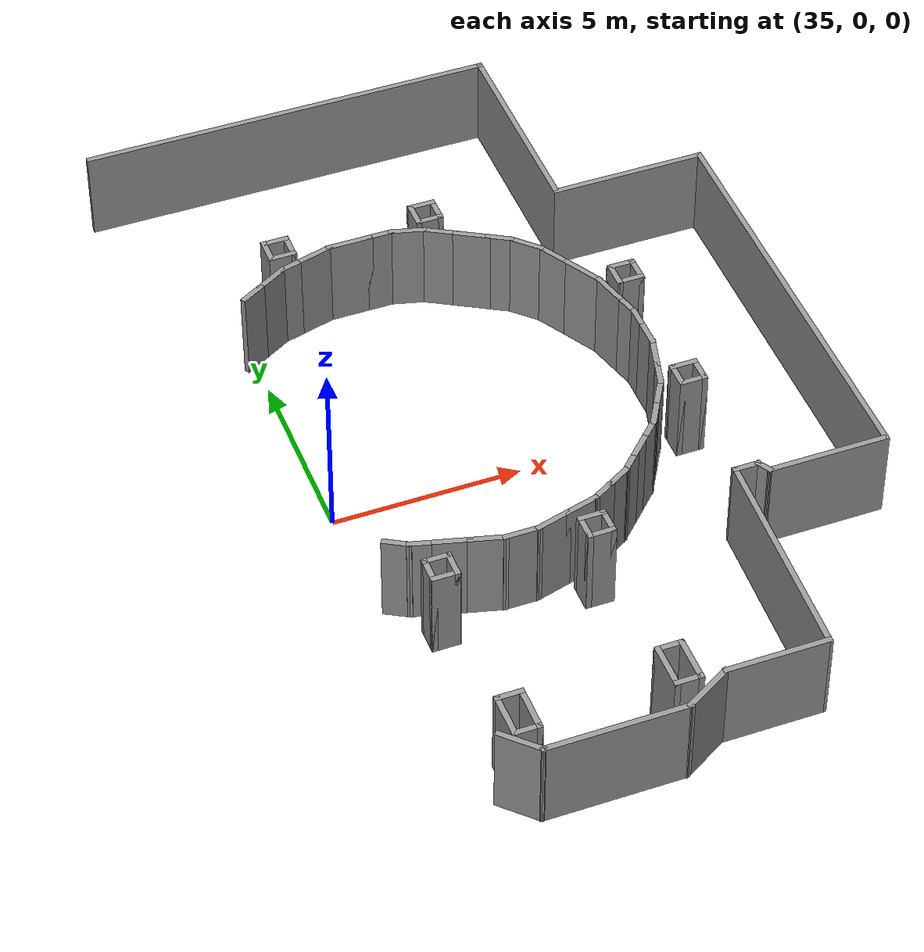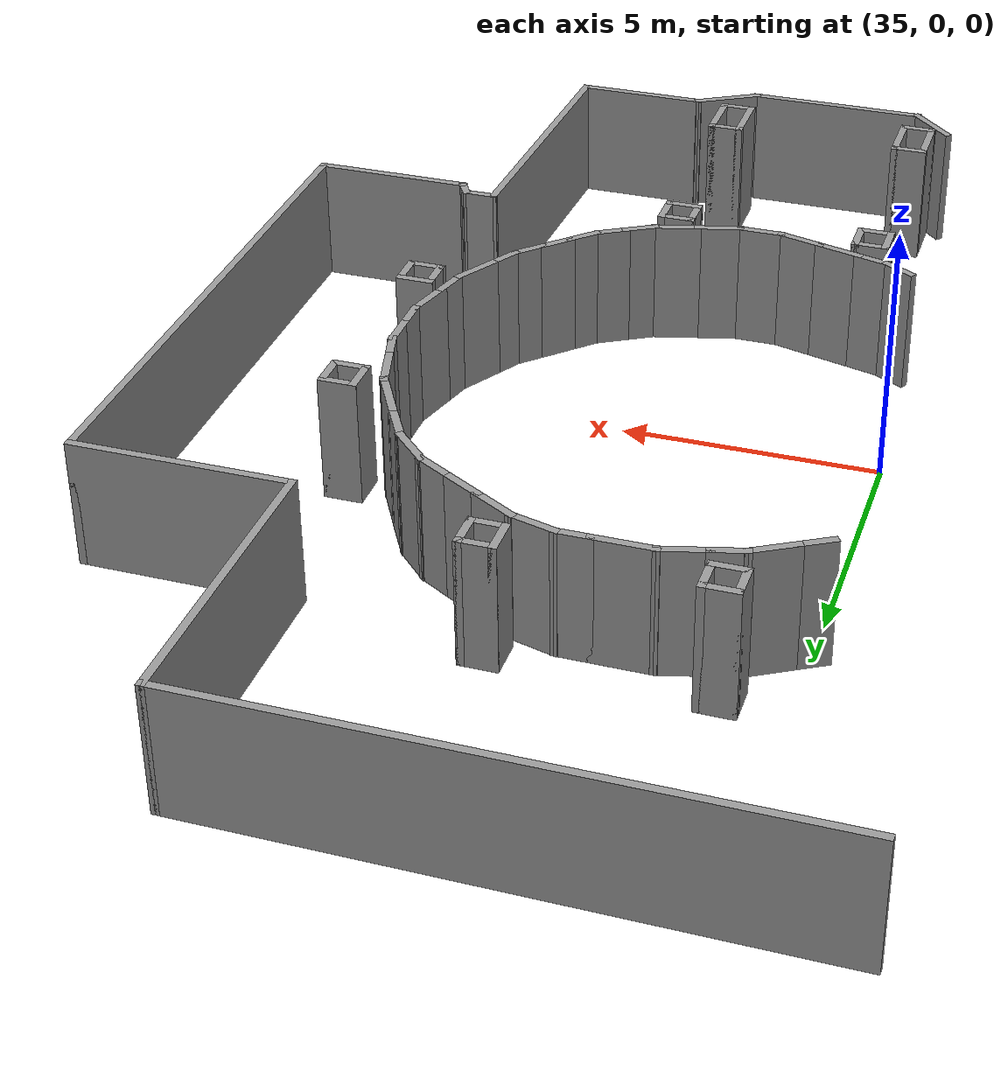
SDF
<sdf version="1.7">
 <model name="TD_n1">
  <pose>-6.74052 -9.30399 0 0 -0 0</pose>
  <link name="Wall_251">
   <collision name="Wall_251_Collision">
    <geometry><box><size>11.25 0.15 2.5</size></box></geometry>
    <pose>0 0 1.25 0 -0 0</pose>
   </collision>
   <visual name="Wall_251_Visual">
    <pose>0 0 1.25 0 -0 0</pose>
    <geometry><box><size>11.25 0.15 2.5</size></box></geometry>
    <material>
     <script><uri>file://media/materials/scripts/gazebo.material</uri><name>Gazebo/Grey</name></script>
     <ambient>1 1 1 1</ambient>
    </material>
    <meta><layer>0</layer></meta>
   </visual>
   <pose>44.9317 21.8787 0 0 -0 0</pose>
  </link>
  <link name="Wall_252">
   <collision name="Wall_252_Collision">
    <geometry><box><size>5.75 0.15 2.5</size></box></geometry>
    <pose>0 0 1.25 0 -0 0</pose>
   </collision>
   <visual name="Wall_252_Visual">
    <pose>0 0 1.25 0 -0 0</pose>
    <geometry><box><size>5.75 0.15 2.5</size></box></geometry>
    <material>
     <script><uri>file://media/materials/scripts/gazebo.material</uri><name>Gazebo/Grey</name></script>
     <ambient>1 1 1 1</ambient>
    </material>
    <meta><layer>0</layer></meta>
   </visual>
   <pose>50.4817 19.0787 0 0 -0 -1.5708</pose>
  </link>
  <link name="Wall_253">
   <collision name="Wall_253_Collision">
    <geometry><box><size>4.25 0.15 2.5</size></box></geometry>
    <pose>0 0 1.25 0 -0 0</pose>
   </collision>
   <visual name="Wall_253_Visual">
    <pose>0 0 1.25 0 -0 0</pose>
    <geometry><box><size>4.25 0.15 2.5</size></box></geometry>
    <material>
     <script><uri>file://media/materials/scripts/gazebo.material</uri><name>Gazebo/Grey</name></script>
     <ambient>1 1 1 1</ambient>
    </material>
    <meta><layer>0</layer></meta>
   </visual>
   <pose>52.5317 16.2787 0 0 -0 0</pose>
  </link>
  <link name="Wall_254">
   <collision name="Wall_254_Collision">
    <geometry><box><size>11.5 0.15 2.5</size></box></geometry>
    <pose>0 0 1.25 0 -0 0</pose>
   </collision>
   <visual name="Wall_254_Visual">
    <pose>0 0 1.25 0 -0 0</pose>
    <geometry><box><size>11.5 0.15 2.5</size></box></geometry>
    <material>
     <script><uri>file://media/materials/scripts/gazebo.material</uri><name>Gazebo/Grey</name></script>
     <ambient>1 1 1 1</ambient>
    </material>
    <meta><layer>0</layer></meta>
   </visual>
   <pose>54.5817 10.6037 0 0 -0 -1.5708</pose>
  </link>
  <link name="Wall_255">
   <collision name="Wall_255_Collision">
    <geometry><box><size>3.25 0.15 2.5</size></box></geometry>
    <pose>0 0 1.25 0 -0 0</pose>
   </collision>
   <visual name="Wall_255_Visual">
    <pose>0 0 1.25 0 -0 0</pose>
    <geometry><box><size>3.25 0.15 2.5</size></box></geometry>
    <material>
     <script><uri>file://media/materials/scripts/gazebo.material</uri><name>Gazebo/Grey</name></script>
     <ambient>1 1 1 1</ambient>
    </material>
    <meta><layer>0</layer></meta>
   </visual>
   <pose>53.0317 4.92866 0 0 -0 3.14159</pose>
  </link>
  <link name="Wall_256">
   <collision name="Wall_256_Collision">
    <geometry><box><size>0.5 0.15 2.5</size></box></geometry>
    <pose>0 0 1.25 0 -0 0</pose>
   </collision>
   <visual name="Wall_256_Visual">
    <pose>0 0 1.25 0 -0 0</pose>
    <geometry><box><size>0.5 0.15 2.5</size></box></geometry>
    <material>
     <script><uri>file://media/materials/scripts/gazebo.material</uri><name>Gazebo/Grey</name></script>
     <ambient>1 1 1 1</ambient>
    </material>
    <meta><layer>0</layer></meta>
   </visual>
   <pose>51.3942 5.08022 0 0 -0 2.0944</pose>
  </link>
  <link name="Wall_257">
   <collision name="Wall_257_Collision">
    <geometry><box><size>0.75 0.15 2.5</size></box></geometry>
    <pose>0 0 1.25 0 -0 0</pose>
   </collision>
   <visual name="Wall_257_Visual">
    <pose>0 0 1.25 0 -0 0</pose>
    <geometry><box><size>0.75 0.15 2.5</size></box></geometry>
    <material>
     <script><uri>file://media/materials/scripts/gazebo.material</uri><name>Gazebo/Grey</name></script>
     <ambient>1 1 1 1</ambient>
    </material>
    <meta><layer>0</layer></meta>
   </visual>
   <pose>51.0067 5.23177 0 0 -0 3.14159</pose>
  </link>
  <link name="Wall_265">
   <collision name="Wall_265_Collision">
    <geometry><box><size>1.25 0.15 2.5</size></box></geometry>
    <pose>0 0 1.25 0 -0 0</pose>
   </collision>
   <visual name="Wall_265_Visual">
    <pose>0 0 1.25 0 -0 0</pose>
    <geometry><box><size>1.25 0.15 2.5</size></box></geometry>
    <material>
     <script><uri>file://media/materials/scripts/gazebo.material</uri><name>Gazebo/Grey</name></script>
     <ambient>1 1 1 1</ambient>
    </material>
    <meta><layer>0</layer></meta>
   </visual>
   <pose>42.7278 -0.853113 0 0 -0 -0.785398</pose>
  </link>
  <link name="Wall_266">
   <collision name="Wall_266_Collision">
    <geometry><box><size>3.75 0.15 2.5</size></box></geometry>
    <pose>0 0 1.25 0 -0 0</pose>
   </collision>
   <visual name="Wall_266_Visual">
    <pose>0 0 1.25 0 -0 0</pose>
    <geometry><box><size>3.75 0.15 2.5</size></box></geometry>
    <material>
     <script><uri>file://media/materials/scripts/gazebo.material</uri><name>Gazebo/Grey</name></script>
     <ambient>1 1 1 1</ambient>
    </material>
    <meta><layer>0</layer></meta>
   </visual>
   <pose>44.9167 -1.24202 0 0 -0 0</pose>
  </link>
  <link name="Wall_267">
   <collision name="Wall_267_Collision">
    <geometry><box><size>1.5 0.15 2.5</size></box></geometry>
    <pose>0 0 1.25 0 -0 0</pose>
   </collision>
   <visual name="Wall_267_Visual">
    <pose>0 0 1.25 0 -0 0</pose>
    <geometry><box><size>1.5 0.15 2.5</size></box></geometry>
    <material>
     <script><uri>file://media/materials/scripts/gazebo.material</uri><name>Gazebo/Grey</name></script>
     <ambient>1 1 1 1</ambient>
    </material>
    <meta><layer>0</layer></meta>
   </visual>
   <pose>47.3013 -0.904522 0 0 -0 0.523599</pose>
  </link>
  <link name="Wall_268">
   <collision name="Wall_268_Collision">
    <geometry><box><size>2.75 0.15 2.5</size></box></geometry>
    <pose>0 0 1.25 0 -0 0</pose>
   </collision>
   <visual name="Wall_268_Visual">
    <pose>0 0 1.25 0 -0 0</pose>
    <geometry><box><size>2.75 0.15 2.5</size></box></geometry>
    <material>
     <script><uri>file://media/materials/scripts/gazebo.material</uri><name>Gazebo/Grey</name></script>
     <ambient>1 1 1 1</ambient>
    </material>
    <meta><layer>0</layer></meta>
   </visual>
   <pose>49.1858 -0.567022 0 0 -0 0</pose>
  </link>
  <link name="Wall_269">
   <collision name="Wall_269_Collision">
    <geometry><box><size>5.953 0.15 2.5</size></box></geometry>
    <pose>0 0 1.25 0 -0 0</pose>
   </collision>
   <visual name="Wall_269_Visual">
    <pose>0 0 1.25 0 -0 0</pose>
    <geometry><box><size>5.953 0.15 2.5</size></box></geometry>
    <material>
     <script><uri>file://media/materials/scripts/gazebo.material</uri><name>Gazebo/Grey</name></script>
     <ambient>1 1 1 1</ambient>
    </material>
    <meta><layer>0</layer></meta>
   </visual>
   <pose>50.5963 2.33237 0 0 -0 1.53272</pose>
  </link>
  <link name="Wall_271">
   <collision name="Wall_271_Collision">
    <geometry><box><size>1.25 0.15 2.5</size></box></geometry>
    <pose>0 0 1.25 0 -0 0</pose>
   </collision>
   <visual name="Wall_271_Visual">
    <pose>0 0 1.25 0 -0 0</pose>
    <geometry><box><size>1.25 0.15 2.5</size></box></geometry>
    <material>
     <script><uri>file://media/materials/scripts/gazebo.material</uri><name>Gazebo/Grey</name></script>
     <ambient>1 1 1 1</ambient>
    </material>
    <meta><layer>0</layer></meta>
   </visual>
   <pose>42.681 -0.025559 0 0 -0 -1.5708</pose>
  </link>
  <link name="Wall_272">
   <collision name="Wall_272_Collision">
    <geometry><box><size>0.75 0.15 2.5</size></box></geometry>
    <pose>0 0 1.25 0 -0 0</pose>
   </collision>
   <visual name="Wall_272_Visual">
    <pose>0 0 1.25 0 -0 0</pose>
    <geometry><box><size>0.75 0.15 2.5</size></box></geometry>
    <material>
     <script><uri>file://media/materials/scripts/gazebo.material</uri><name>Gazebo/Grey</name></script>
     <ambient>1 1 1 1</ambient>
    </material>
    <meta><layer>0</layer></meta>
   </visual>
   <pose>42.981 -0.57556 0 0 -0 0</pose>
  </link>
  <link name="Wall_273">
   <collision name="Wall_273_Collision">
    <geometry><box><size>1.25 0.15 2.5</size></box></geometry>
    <pose>0 0 1.25 0 -0 0</pose>
   </collision>
   <visual name="Wall_273_Visual">
    <pose>0 0 1.25 0 -0 0</pose>
    <geometry><box><size>1.25 0.15 2.5</size></box></geometry>
    <material>
     <script><uri>file://media/materials/scripts/gazebo.material</uri><name>Gazebo/Grey</name></script>
     <ambient>1 1 1 1</ambient>
    </material>
    <meta><layer>0</layer></meta>
   </visual>
   <pose>43.281 -0.025559 0 0 -0 1.5708</pose>
  </link>
  <link name="Wall_274">
   <collision name="Wall_274_Collision">
    <geometry><box><size>0.75 0.15 2.5</size></box></geometry>
    <pose>0 0 1.25 0 -0 0</pose>
   </collision>
   <visual name="Wall_274_Visual">
    <pose>0 0 1.25 0 -0 0</pose>
    <geometry><box><size>0.75 0.15 2.5</size></box></geometry>
    <material>
     <script><uri>file://media/materials/scripts/gazebo.material</uri><name>Gazebo/Grey</name></script>
     <ambient>1 1 1 1</ambient>
    </material>
    <meta><layer>0</layer></meta>
   </visual>
   <pose>42.981 0.524441 0 0 -0 3.14159</pose>
  </link>
  <link name="Wall_276">
   <collision name="Wall_276_Collision">
    <geometry><box><size>1.25 0.15 2.5</size></box></geometry>
    <pose>0 0 1.25 0 -0 0</pose>
   </collision>
   <visual name="Wall_276_Visual">
    <pose>0 0 1.25 0 -0 0</pose>
    <geometry><box><size>1.25 0.15 2.5</size></box></geometry>
    <material>
     <script><uri>file://media/materials/scripts/gazebo.material</uri><name>Gazebo/Grey</name></script>
     <ambient>1 1 1 1</ambient>
    </material>
    <meta><layer>0</layer></meta>
   </visual>
   <pose>46.6783 0.034101 0 0 -0 -1.5708</pose>
  </link>
  <link name="Wall_277">
   <collision name="Wall_277_Collision">
    <geometry><box><size>0.75 0.15 2.5</size></box></geometry>
    <pose>0 0 1.25 0 -0 0</pose>
   </collision>
   <visual name="Wall_277_Visual">
    <pose>0 0 1.25 0 -0 0</pose>
    <geometry><box><size>0.75 0.15 2.5</size></box></geometry>
    <material>
     <script><uri>file://media/materials/scripts/gazebo.material</uri><name>Gazebo/Grey</name></script>
     <ambient>1 1 1 1</ambient>
    </material>
    <meta><layer>0</layer></meta>
   </visual>
   <pose>46.9783 -0.515898 0 0 -0 0</pose>
  </link>
  <link name="Wall_278">
   <collision name="Wall_278_Collision">
    <geometry><box><size>1.25 0.15 2.5</size></box></geometry>
    <pose>0 0 1.25 0 -0 0</pose>
   </collision>
   <visual name="Wall_278_Visual">
    <pose>0 0 1.25 0 -0 0</pose>
    <geometry><box><size>1.25 0.15 2.5</size></box></geometry>
    <material>
     <script><uri>file://media/materials/scripts/gazebo.material</uri><name>Gazebo/Grey</name></script>
     <ambient>1 1 1 1</ambient>
    </material>
    <meta><layer>0</layer></meta>
   </visual>
   <pose>47.2783 0.034101 0 0 -0 1.5708</pose>
  </link>
  <link name="Wall_279">
   <collision name="Wall_279_Collision">
    <geometry><box><size>0.75 0.15 2.5</size></box></geometry>
    <pose>0 0 1.25 0 -0 0</pose>
   </collision>
   <visual name="Wall_279_Visual">
    <pose>0 0 1.25 0 -0 0</pose>
    <geometry><box><size>0.75 0.15 2.5</size></box></geometry>
    <material>
     <script><uri>file://media/materials/scripts/gazebo.material</uri><name>Gazebo/Grey</name></script>
     <ambient>1 1 1 1</ambient>
    </material>
    <meta><layer>0</layer></meta>
   </visual>
   <pose>46.9783 0.584102 0 0 -0 3.14159</pose>
  </link>
  <link name="Wall_285">
   <collision name="Wall_285_Collision">
    <geometry><box><size>0.75 0.15 2.5</size></box></geometry>
    <pose>0 0 1.25 0 -0 0</pose>
   </collision>
   <visual name="Wall_285_Visual">
    <pose>0 0 1.25 0 -0 0</pose>
    <geometry><box><size>0.75 0.15 2.5</size></box></geometry>
    <material>
     <script><uri>file://media/materials/scripts/gazebo.material</uri><name>Gazebo/Grey</name></script>
     <ambient>1 1 1 1</ambient>
    </material>
    <meta><layer>0</layer></meta>
   </visual>
   <pose>42.2116 5.8765 0 0 -0 -0.523599</pose>
  </link>
  <link name="Wall_286">
   <collision name="Wall_286_Collision">
    <geometry><box><size>0.75 0.15 2.5</size></box></geometry>
    <pose>0 0 1.25 0 -0 0</pose>
   </collision>
   <visual name="Wall_286_Visual">
    <pose>0 0 1.25 0 -0 0</pose>
    <geometry><box><size>0.75 0.15 2.5</size></box></geometry>
    <material>
     <script><uri>file://media/materials/scripts/gazebo.material</uri><name>Gazebo/Grey</name></script>
     <ambient>1 1 1 1</ambient>
    </material>
    <meta><layer>0</layer></meta>
   </visual>
   <pose>42.7612 5.64886 0 0 -0 -0.261799</pose>
  </link>
  <link name="Wall_287">
   <collision name="Wall_287_Collision">
    <geometry><box><size>1 0.15 2.5</size></box></geometry>
    <pose>0 0 1.25 0 -0 0</pose>
   </collision>
   <visual name="Wall_287_Visual">
    <pose>0 0 1.25 0 -0 0</pose>
    <geometry><box><size>1 0.15 2.5</size></box></geometry>
    <material>
     <script><uri>file://media/materials/scripts/gazebo.material</uri><name>Gazebo/Grey</name></script>
     <ambient>1 1 1 1</ambient>
    </material>
    <meta><layer>0</layer></meta>
   </visual>
   <pose>43.4615 5.46121 0 0 -0 -0.261799</pose>
  </link>
  <link name="Wall_288">
   <collision name="Wall_288_Collision">
    <geometry><box><size>1 0.15 2.5</size></box></geometry>
    <pose>0 0 1.25 0 -0 0</pose>
   </collision>
   <visual name="Wall_288_Visual">
    <pose>0 0 1.25 0 -0 0</pose>
    <geometry><box><size>1 0.15 2.5</size></box></geometry>
    <material>
     <script><uri>file://media/materials/scripts/gazebo.material</uri><name>Gazebo/Grey</name></script>
     <ambient>1 1 1 1</ambient>
    </material>
    <meta><layer>0</layer></meta>
   </visual>
   <pose>44.2825 5.24122 0 0 -0 -0.261799</pose>
  </link>
  <link name="Wall_289">
   <collision name="Wall_289_Collision">
    <geometry><box><size>1 0.15 2.5</size></box></geometry>
    <pose>0 0 1.25 0 -0 0</pose>
   </collision>
   <visual name="Wall_289_Visual">
    <pose>0 0 1.25 0 -0 0</pose>
    <geometry><box><size>1 0.15 2.5</size></box></geometry>
    <material>
     <script><uri>file://media/materials/scripts/gazebo.material</uri><name>Gazebo/Grey</name></script>
     <ambient>1 1 1 1</ambient>
    </material>
    <meta><layer>0</layer></meta>
   </visual>
   <pose>45.118 5.13122 0 0 -0 0</pose>
  </link>
  <link name="Wall_290">
   <collision name="Wall_290_Collision">
    <geometry><box><size>1 0.15 2.5</size></box></geometry>
    <pose>0 0 1.25 0 -0 0</pose>
   </collision>
   <visual name="Wall_290_Visual">
    <pose>0 0 1.25 0 -0 0</pose>
    <geometry><box><size>1 0.15 2.5</size></box></geometry>
    <material>
     <script><uri>file://media/materials/scripts/gazebo.material</uri><name>Gazebo/Grey</name></script>
     <ambient>1 1 1 1</ambient>
    </material>
    <meta><layer>0</layer></meta>
   </visual>
   <pose>45.9536 5.24122 0 0 -0 0.261799</pose>
  </link>
  <link name="Wall_291">
   <collision name="Wall_291_Collision">
    <geometry><box><size>1 0.15 2.5</size></box></geometry>
    <pose>0 0 1.25 0 -0 0</pose>
   </collision>
   <visual name="Wall_291_Visual">
    <pose>0 0 1.25 0 -0 0</pose>
    <geometry><box><size>1 0.15 2.5</size></box></geometry>
    <material>
     <script><uri>file://media/materials/scripts/gazebo.material</uri><name>Gazebo/Grey</name></script>
     <ambient>1 1 1 1</ambient>
    </material>
    <meta><layer>0</layer></meta>
   </visual>
   <pose>46.7746 5.46121 0 0 -0 0.261799</pose>
  </link>
  <link name="Wall_292">
   <collision name="Wall_292_Collision">
    <geometry><box><size>0.75 0.15 2.5</size></box></geometry>
    <pose>0 0 1.25 0 -0 0</pose>
   </collision>
   <visual name="Wall_292_Visual">
    <pose>0 0 1.25 0 -0 0</pose>
    <geometry><box><size>0.75 0.15 2.5</size></box></geometry>
    <material>
     <script><uri>file://media/materials/scripts/gazebo.material</uri><name>Gazebo/Grey</name></script>
     <ambient>1 1 1 1</ambient>
    </material>
    <meta><layer>0</layer></meta>
   </visual>
   <pose>47.4449 5.72121 0 0 -0 0.523599</pose>
  </link>
  <link name="Wall_293">
   <collision name="Wall_293_Collision">
    <geometry><box><size>0.75 0.15 2.5</size></box></geometry>
    <pose>0 0 1.25 0 -0 0</pose>
   </collision>
   <visual name="Wall_293_Visual">
    <pose>0 0 1.25 0 -0 0</pose>
    <geometry><box><size>0.75 0.15 2.5</size></box></geometry>
    <material>
     <script><uri>file://media/materials/scripts/gazebo.material</uri><name>Gazebo/Grey</name></script>
     <ambient>1 1 1 1</ambient>
    </material>
    <meta><layer>0</layer></meta>
   </visual>
   <pose>47.9645 6.02121 0 0 -0 0.523599</pose>
  </link>
  <link name="Wall_294">
   <collision name="Wall_294_Collision">
    <geometry><box><size>0.75 0.15 2.5</size></box></geometry>
    <pose>0 0 1.25 0 -0 0</pose>
   </collision>
   <visual name="Wall_294_Visual">
    <pose>0 0 1.25 0 -0 0</pose>
    <geometry><box><size>0.75 0.15 2.5</size></box></geometry>
    <material>
     <script><uri>file://media/materials/scripts/gazebo.material</uri><name>Gazebo/Grey</name></script>
     <ambient>1 1 1 1</ambient>
    </material>
    <meta><layer>0</layer></meta>
   </visual>
   <pose>48.4365 6.38334 0 0 -0 0.785398</pose>
  </link>
  <link name="Wall_295">
   <collision name="Wall_295_Collision">
    <geometry><box><size>0.75 0.15 2.5</size></box></geometry>
    <pose>0 0 1.25 0 -0 0</pose>
   </collision>
   <visual name="Wall_295_Visual">
    <pose>0 0 1.25 0 -0 0</pose>
    <geometry><box><size>0.75 0.15 2.5</size></box></geometry>
    <material>
     <script><uri>file://media/materials/scripts/gazebo.material</uri><name>Gazebo/Grey</name></script>
     <ambient>1 1 1 1</ambient>
    </material>
    <meta><layer>0</layer></meta>
   </visual>
   <pose>48.8607 6.80761 0 0 -0 0.785398</pose>
  </link>
  <link name="Wall_296">
   <collision name="Wall_296_Collision">
    <geometry><box><size>0.75 0.15 2.5</size></box></geometry>
    <pose>0 0 1.25 0 -0 0</pose>
   </collision>
   <visual name="Wall_296_Visual">
    <pose>0 0 1.25 0 -0 0</pose>
    <geometry><box><size>0.75 0.15 2.5</size></box></geometry>
    <material>
     <script><uri>file://media/materials/scripts/gazebo.material</uri><name>Gazebo/Grey</name></script>
     <ambient>1 1 1 1</ambient>
    </material>
    <meta><layer>0</layer></meta>
   </visual>
   <pose>49.285 7.23187 0 0 -0 0.785398</pose>
  </link>
  <link name="Wall_297">
   <collision name="Wall_297_Collision">
    <geometry><box><size>0.75 0.15 2.5</size></box></geometry>
    <pose>0 0 1.25 0 -0 0</pose>
   </collision>
   <visual name="Wall_297_Visual">
    <pose>0 0 1.25 0 -0 0</pose>
    <geometry><box><size>0.75 0.15 2.5</size></box></geometry>
    <material>
     <script><uri>file://media/materials/scripts/gazebo.material</uri><name>Gazebo/Grey</name></script>
     <ambient>1 1 1 1</ambient>
    </material>
    <meta><layer>0</layer></meta>
   </visual>
   <pose>49.6471 7.70381 0 0 -0 1.0472</pose>
  </link>
  <link name="Wall_298">
   <collision name="Wall_298_Collision">
    <geometry><box><size>1 0.15 2.5</size></box></geometry>
    <pose>0 0 1.25 0 -0 0</pose>
   </collision>
   <visual name="Wall_298_Visual">
    <pose>0 0 1.25 0 -0 0</pose>
    <geometry><box><size>1 0.15 2.5</size></box></geometry>
    <material>
     <script><uri>file://media/materials/scripts/gazebo.material</uri><name>Gazebo/Grey</name></script>
     <ambient>1 1 1 1</ambient>
    </material>
    <meta><layer>0</layer></meta>
   </visual>
   <pose>50.0096 8.33168 0 0 -0 1.0472</pose>
  </link>
  <link name="Wall_299">
   <collision name="Wall_299_Collision">
    <geometry><box><size>0.75 0.15 2.5</size></box></geometry>
    <pose>0 0 1.25 0 -0 0</pose>
   </collision>
   <visual name="Wall_299_Visual">
    <pose>0 0 1.25 0 -0 0</pose>
    <geometry><box><size>0.75 0.15 2.5</size></box></geometry>
    <material>
     <script><uri>file://media/materials/scripts/gazebo.material</uri><name>Gazebo/Grey</name></script>
     <ambient>1 1 1 1</ambient>
    </material>
    <meta><layer>0</layer></meta>
   </visual>
   <pose>50.2998 8.98952 0 0 -0 1.309</pose>
  </link>
  <link name="Wall_300">
   <collision name="Wall_300_Collision">
    <geometry><box><size>1 0.15 2.5</size></box></geometry>
    <pose>0 0 1.25 0 -0 0</pose>
   </collision>
   <visual name="Wall_300_Visual">
    <pose>0 0 1.25 0 -0 0</pose>
    <geometry><box><size>1 0.15 2.5</size></box></geometry>
    <material>
     <script><uri>file://media/materials/scripts/gazebo.material</uri><name>Gazebo/Grey</name></script>
     <ambient>1 1 1 1</ambient>
    </material>
    <meta><layer>0</layer></meta>
   </visual>
   <pose>50.4874 9.68981 0 0 -0 1.309</pose>
  </link>
  <link name="Wall_301">
   <collision name="Wall_301_Collision">
    <geometry><box><size>0.75 0.15 2.5</size></box></geometry>
    <pose>0 0 1.25 0 -0 0</pose>
   </collision>
   <visual name="Wall_301_Visual">
    <pose>0 0 1.25 0 -0 0</pose>
    <geometry><box><size>0.75 0.15 2.5</size></box></geometry>
    <material>
     <script><uri>file://media/materials/scripts/gazebo.material</uri><name>Gazebo/Grey</name></script>
     <ambient>1 1 1 1</ambient>
    </material>
    <meta><layer>0</layer></meta>
   </visual>
   <pose>50.5974 10.4003 0 0 -0 1.5708</pose>
  </link>
  <link name="Wall_302">
   <collision name="Wall_302_Collision">
    <geometry><box><size>0.75 0.15 2.5</size></box></geometry>
    <pose>0 0 1.25 0 -0 0</pose>
   </collision>
   <visual name="Wall_302_Visual">
    <pose>0 0 1.25 0 -0 0</pose>
    <geometry><box><size>0.75 0.15 2.5</size></box></geometry>
    <material>
     <script><uri>file://media/materials/scripts/gazebo.material</uri><name>Gazebo/Grey</name></script>
     <ambient>1 1 1 1</ambient>
    </material>
    <meta><layer>0</layer></meta>
   </visual>
   <pose>50.5974 11.0003 0 0 -0 1.5708</pose>
  </link>
  <link name="Wall_303">
   <collision name="Wall_303_Collision">
    <geometry><box><size>0.75 0.15 2.5</size></box></geometry>
    <pose>0 0 1.25 0 -0 0</pose>
   </collision>
   <visual name="Wall_303_Visual">
    <pose>0 0 1.25 0 -0 0</pose>
    <geometry><box><size>0.75 0.15 2.5</size></box></geometry>
    <material>
     <script><uri>file://media/materials/scripts/gazebo.material</uri><name>Gazebo/Grey</name></script>
     <ambient>1 1 1 1</ambient>
    </material>
    <meta><layer>0</layer></meta>
   </visual>
   <pose>50.5198 11.5901 0 0 -0 1.8326</pose>
  </link>
  <link name="Wall_304">
   <collision name="Wall_304_Collision">
    <geometry><box><size>1 0.15 2.5</size></box></geometry>
    <pose>0 0 1.25 0 -0 0</pose>
   </collision>
   <visual name="Wall_304_Visual">
    <pose>0 0 1.25 0 -0 0</pose>
    <geometry><box><size>1 0.15 2.5</size></box></geometry>
    <material>
     <script><uri>file://media/materials/scripts/gazebo.material</uri><name>Gazebo/Grey</name></script>
     <ambient>1 1 1 1</ambient>
    </material>
    <meta><layer>0</layer></meta>
   </visual>
   <pose>50.3321 12.2904 0 0 -0 1.8326</pose>
  </link>
  <link name="Wall_306">
   <collision name="Wall_306_Collision">
    <geometry><box><size>1.19577 0.15 2.5</size></box></geometry>
    <pose>0 0 1.25 0 -0 0</pose>
   </collision>
   <visual name="Wall_306_Visual">
    <pose>0 0 1.25 0 -0 0</pose>
    <geometry><box><size>1.19577 0.15 2.5</size></box></geometry>
    <material>
     <script><uri>file://media/materials/scripts/gazebo.material</uri><name>Gazebo/Grey</name></script>
     <ambient>1 1 1 1</ambient>
    </material>
    <meta><layer>0</layer></meta>
   </visual>
   <pose>49.967 13.1574 0 0 -0 2.08047</pose>
  </link>
  <link name="Wall_309">
   <collision name="Wall_309_Collision">
    <geometry><box><size>1 0.15 2.5</size></box></geometry>
    <pose>0 0 1.25 0 -0 0</pose>
   </collision>
   <visual name="Wall_309_Visual">
    <pose>0 0 1.25 0 -0 0</pose>
    <geometry><box><size>1 0.15 2.5</size></box></geometry>
    <material>
     <script><uri>file://media/materials/scripts/gazebo.material</uri><name>Gazebo/Grey</name></script>
     <ambient>1 1 1 1</ambient>
    </material>
    <meta><layer>0</layer></meta>
   </visual>
   <pose>49.4994 13.9818 0 0 -0 2.0944</pose>
  </link>
  <link name="Wall_310">
   <collision name="Wall_310_Collision">
    <geometry><box><size>1 0.15 2.5</size></box></geometry>
    <pose>0 0 1.25 0 -0 0</pose>
   </collision>
   <visual name="Wall_310_Visual">
    <pose>0 0 1.25 0 -0 0</pose>
    <geometry><box><size>1 0.15 2.5</size></box></geometry>
    <material>
     <script><uri>file://media/materials/scripts/gazebo.material</uri><name>Gazebo/Grey</name></script>
     <ambient>1 1 1 1</ambient>
    </material>
    <meta><layer>0</layer></meta>
   </visual>
   <pose>48.9864 14.6504 0 0 -0 2.35619</pose>
  </link>
  <link name="Wall_312">
   <collision name="Wall_312_Collision">
    <geometry><box><size>0.75 0.15 2.5</size></box></geometry>
    <pose>0 0 1.25 0 -0 0</pose>
   </collision>
   <visual name="Wall_312_Visual">
    <pose>0 0 1.25 0 -0 0</pose>
    <geometry><box><size>0.75 0.15 2.5</size></box></geometry>
    <material>
     <script><uri>file://media/materials/scripts/gazebo.material</uri><name>Gazebo/Grey</name></script>
     <ambient>1 1 1 1</ambient>
    </material>
    <meta><layer>0</layer></meta>
   </visual>
   <pose>48.4261 15.1009 0 0 -0 2.61799</pose>
  </link>
  <link name="Wall_313">
   <collision name="Wall_313_Collision">
    <geometry><box><size>1 0.15 2.5</size></box></geometry>
    <pose>0 0 1.25 0 -0 0</pose>
   </collision>
   <visual name="Wall_313_Visual">
    <pose>0 0 1.25 0 -0 0</pose>
    <geometry><box><size>1 0.15 2.5</size></box></geometry>
    <material>
     <script><uri>file://media/materials/scripts/gazebo.material</uri><name>Gazebo/Grey</name></script>
     <ambient>1 1 1 1</ambient>
    </material>
    <meta><layer>0</layer></meta>
   </visual>
   <pose>47.7982 15.4634 0 0 -0 2.61799</pose>
  </link>
  <link name="Wall_314">
   <collision name="Wall_314_Collision">
    <geometry><box><size>1 0.15 2.5</size></box></geometry>
    <pose>0 0 1.25 0 -0 0</pose>
   </collision>
   <visual name="Wall_314_Visual">
    <pose>0 0 1.25 0 -0 0</pose>
    <geometry><box><size>1 0.15 2.5</size></box></geometry>
    <material>
     <script><uri>file://media/materials/scripts/gazebo.material</uri><name>Gazebo/Grey</name></script>
     <ambient>1 1 1 1</ambient>
    </material>
    <meta><layer>0</layer></meta>
   </visual>
   <pose>47.0621 15.8884 0 0 -0 2.61799</pose>
  </link>
  <link name="Wall_315">
   <collision name="Wall_315_Collision">
    <geometry><box><size>1 0.15 2.5</size></box></geometry>
    <pose>0 0 1.25 0 -0 0</pose>
   </collision>
   <visual name="Wall_315_Visual">
    <pose>0 0 1.25 0 -0 0</pose>
    <geometry><box><size>1 0.15 2.5</size></box></geometry>
    <material>
     <script><uri>file://media/materials/scripts/gazebo.material</uri><name>Gazebo/Grey</name></script>
     <ambient>1 1 1 1</ambient>
    </material>
    <meta><layer>0</layer></meta>
   </visual>
   <pose>46.2835 16.2109 0 0 -0 2.87979</pose>
  </link>
  <link name="Wall_316">
   <collision name="Wall_316_Collision">
    <geometry><box><size>0.75 0.15 2.5</size></box></geometry>
    <pose>0 0 1.25 0 -0 0</pose>
   </collision>
   <visual name="Wall_316_Visual">
    <pose>0 0 1.25 0 -0 0</pose>
    <geometry><box><size>0.75 0.15 2.5</size></box></geometry>
    <material>
     <script><uri>file://media/materials/scripts/gazebo.material</uri><name>Gazebo/Grey</name></script>
     <ambient>1 1 1 1</ambient>
    </material>
    <meta><layer>0</layer></meta>
   </visual>
   <pose>45.573 16.3209 0 0 -0 3.14159</pose>
  </link>
  <link name="Wall_317">
   <collision name="Wall_317_Collision">
    <geometry><box><size>1.25 0.15 2.5</size></box></geometry>
    <pose>0 0 1.25 0 -0 0</pose>
   </collision>
   <visual name="Wall_317_Visual">
    <pose>0 0 1.25 0 -0 0</pose>
    <geometry><box><size>1.25 0.15 2.5</size></box></geometry>
    <material>
     <script><uri>file://media/materials/scripts/gazebo.material</uri><name>Gazebo/Grey</name></script>
     <ambient>1 1 1 1</ambient>
    </material>
    <meta><layer>0</layer></meta>
   </visual>
   <pose>44.723 16.3209 0 0 -0 3.14159</pose>
  </link>
  <link name="Wall_318">
   <collision name="Wall_318_Collision">
    <geometry><box><size>1 0.15 2.5</size></box></geometry>
    <pose>0 0 1.25 0 -0 0</pose>
   </collision>
   <visual name="Wall_318_Visual">
    <pose>0 0 1.25 0 -0 0</pose>
    <geometry><box><size>1 0.15 2.5</size></box></geometry>
    <material>
     <script><uri>file://media/materials/scripts/gazebo.material</uri><name>Gazebo/Grey</name></script>
     <ambient>1 1 1 1</ambient>
    </material>
    <meta><layer>0</layer></meta>
   </visual>
   <pose>43.7625 16.2109 0 0 -0 -2.87979</pose>
  </link>
  <link name="Wall_319">
   <collision name="Wall_319_Collision">
    <geometry><box><size>0.75 0.15 2.5</size></box></geometry>
    <pose>0 0 1.25 0 -0 0</pose>
   </collision>
   <visual name="Wall_319_Visual">
    <pose>0 0 1.25 0 -0 0</pose>
    <geometry><box><size>0.75 0.15 2.5</size></box></geometry>
    <material>
     <script><uri>file://media/materials/scripts/gazebo.material</uri><name>Gazebo/Grey</name></script>
     <ambient>1 1 1 1</ambient>
    </material>
    <meta><layer>0</layer></meta>
   </visual>
   <pose>43.0622 16.0233 0 0 -0 -2.87979</pose>
  </link>
  <link name="Wall_320">
   <collision name="Wall_320_Collision">
    <geometry><box><size>1 0.15 2.5</size></box></geometry>
    <pose>0 0 1.25 0 -0 0</pose>
   </collision>
   <visual name="Wall_320_Visual">
    <pose>0 0 1.25 0 -0 0</pose>
    <geometry><box><size>1 0.15 2.5</size></box></geometry>
    <material>
     <script><uri>file://media/materials/scripts/gazebo.material</uri><name>Gazebo/Grey</name></script>
     <ambient>1 1 1 1</ambient>
    </material>
    <meta><layer>0</layer></meta>
   </visual>
   <pose>42.4043 15.7332 0 0 -0 -2.61799</pose>
  </link>
  <link name="Wall_321">
   <collision name="Wall_321_Collision">
    <geometry><box><size>0.75 0.15 2.5</size></box></geometry>
    <pose>0 0 1.25 0 -0 0</pose>
   </collision>
   <visual name="Wall_321_Visual">
    <pose>0 0 1.25 0 -0 0</pose>
    <geometry><box><size>0.75 0.15 2.5</size></box></geometry>
    <material>
     <script><uri>file://media/materials/scripts/gazebo.material</uri><name>Gazebo/Grey</name></script>
     <ambient>1 1 1 1</ambient>
    </material>
    <meta><layer>0</layer></meta>
   </visual>
   <pose>41.7765 15.3707 0 0 -0 -2.61799</pose>
  </link>
  <link name="Wall_333">
   <collision name="Wall_333_Collision">
    <geometry><box><size>0.75 0.15 2.5</size></box></geometry>
    <pose>0 0 1.25 0 -0 0</pose>
   </collision>
   <visual name="Wall_333_Visual">
    <pose>0 0 1.25 0 -0 0</pose>
    <geometry><box><size>0.75 0.15 2.5</size></box></geometry>
    <material>
     <script><uri>file://media/materials/scripts/gazebo.material</uri><name>Gazebo/Grey</name></script>
     <ambient>1 1 1 1</ambient>
    </material>
    <meta><layer>0</layer></meta>
   </visual>
   <pose>42.6412 16.7506 0 0 -0 -1.5708</pose>
  </link>
  <link name="Wall_334">
   <collision name="Wall_334_Collision">
    <geometry><box><size>0.75 0.15 2.5</size></box></geometry>
    <pose>0 0 1.25 0 -0 0</pose>
   </collision>
   <visual name="Wall_334_Visual">
    <pose>0 0 1.25 0 -0 0</pose>
    <geometry><box><size>0.75 0.15 2.5</size></box></geometry>
    <material>
     <script><uri>file://media/materials/scripts/gazebo.material</uri><name>Gazebo/Grey</name></script>
     <ambient>1 1 1 1</ambient>
    </material>
    <meta><layer>0</layer></meta>
   </visual>
   <pose>42.9412 16.4506 0 0 -0 0</pose>
  </link>
  <link name="Wall_335">
   <collision name="Wall_335_Collision">
    <geometry><box><size>0.75 0.15 2.5</size></box></geometry>
    <pose>0 0 1.25 0 -0 0</pose>
   </collision>
   <visual name="Wall_335_Visual">
    <pose>0 0 1.25 0 -0 0</pose>
    <geometry><box><size>0.75 0.15 2.5</size></box></geometry>
    <material>
     <script><uri>file://media/materials/scripts/gazebo.material</uri><name>Gazebo/Grey</name></script>
     <ambient>1 1 1 1</ambient>
    </material>
    <meta><layer>0</layer></meta>
   </visual>
   <pose>43.2412 16.7506 0 0 -0 1.5708</pose>
  </link>
  <link name="Wall_336">
   <collision name="Wall_336_Collision">
    <geometry><box><size>0.75 0.15 2.5</size></box></geometry>
    <pose>0 0 1.25 0 -0 0</pose>
   </collision>
   <visual name="Wall_336_Visual">
    <pose>0 0 1.25 0 -0 0</pose>
    <geometry><box><size>0.75 0.15 2.5</size></box></geometry>
    <material>
     <script><uri>file://media/materials/scripts/gazebo.material</uri><name>Gazebo/Grey</name></script>
     <ambient>1 1 1 1</ambient>
    </material>
    <meta><layer>0</layer></meta>
   </visual>
   <pose>42.9412 17.0506 0 0 -0 3.14159</pose>
  </link>
  <link name="Wall_338">
   <collision name="Wall_338_Collision">
    <geometry><box><size>0.75 0.15 2.5</size></box></geometry>
    <pose>0 0 1.25 0 -0 0</pose>
   </collision>
   <visual name="Wall_338_Visual">
    <pose>0 0 1.25 0 -0 0</pose>
    <geometry><box><size>0.75 0.15 2.5</size></box></geometry>
    <material>
     <script><uri>file://media/materials/scripts/gazebo.material</uri><name>Gazebo/Grey</name></script>
     <ambient>1 1 1 1</ambient>
    </material>
    <meta><layer>0</layer></meta>
   </visual>
   <pose>46.6783 16.7307 0 0 -0 -1.5708</pose>
  </link>
  <link name="Wall_339">
   <collision name="Wall_339_Collision">
    <geometry><box><size>0.75 0.15 2.5</size></box></geometry>
    <pose>0 0 1.25 0 -0 0</pose>
   </collision>
   <visual name="Wall_339_Visual">
    <pose>0 0 1.25 0 -0 0</pose>
    <geometry><box><size>0.75 0.15 2.5</size></box></geometry>
    <material>
     <script><uri>file://media/materials/scripts/gazebo.material</uri><name>Gazebo/Grey</name></script>
     <ambient>1 1 1 1</ambient>
    </material>
    <meta><layer>0</layer></meta>
   </visual>
   <pose>46.9783 16.4307 0 0 -0 0</pose>
  </link>
  <link name="Wall_340">
   <collision name="Wall_340_Collision">
    <geometry><box><size>0.75 0.15 2.5</size></box></geometry>
    <pose>0 0 1.25 0 -0 0</pose>
   </collision>
   <visual name="Wall_340_Visual">
    <pose>0 0 1.25 0 -0 0</pose>
    <geometry><box><size>0.75 0.15 2.5</size></box></geometry>
    <material>
     <script><uri>file://media/materials/scripts/gazebo.material</uri><name>Gazebo/Grey</name></script>
     <ambient>1 1 1 1</ambient>
    </material>
    <meta><layer>0</layer></meta>
   </visual>
   <pose>47.2783 16.7307 0 0 -0 1.5708</pose>
  </link>
  <link name="Wall_341">
   <collision name="Wall_341_Collision">
    <geometry><box><size>0.75 0.15 2.5</size></box></geometry>
    <pose>0 0 1.25 0 -0 0</pose>
   </collision>
   <visual name="Wall_341_Visual">
    <pose>0 0 1.25 0 -0 0</pose>
    <geometry><box><size>0.75 0.15 2.5</size></box></geometry>
    <material>
     <script><uri>file://media/materials/scripts/gazebo.material</uri><name>Gazebo/Grey</name></script>
     <ambient>1 1 1 1</ambient>
    </material>
    <meta><layer>0</layer></meta>
   </visual>
   <pose>46.9783 17.0307 0 0 -0 3.14159</pose>
  </link>
  <link name="Wall_343">
   <collision name="Wall_343_Collision">
    <geometry><box><size>0.75 0.15 2.5</size></box></geometry>
    <pose>0 0 1.25 0 -0 0</pose>
   </collision>
   <visual name="Wall_343_Visual">
    <pose>0 0 1.25 0 -0 0</pose>
    <geometry><box><size>0.75 0.15 2.5</size></box></geometry>
    <material>
     <script><uri>file://media/materials/scripts/gazebo.material</uri><name>Gazebo/Grey</name></script>
     <ambient>1 1 1 1</ambient>
    </material>
    <meta><layer>0</layer></meta>
   </visual>
   <pose>50.6756 12.7334 0 0 -0 -1.5708</pose>
  </link>
  <link name="Wall_344">
   <collision name="Wall_344_Collision">
    <geometry><box><size>0.75 0.15 2.5</size></box></geometry>
    <pose>0 0 1.25 0 -0 0</pose>
   </collision>
   <visual name="Wall_344_Visual">
    <pose>0 0 1.25 0 -0 0</pose>
    <geometry><box><size>0.75 0.15 2.5</size></box></geometry>
    <material>
     <script><uri>file://media/materials/scripts/gazebo.material</uri><name>Gazebo/Grey</name></script>
     <ambient>1 1 1 1</ambient>
    </material>
    <meta><layer>0</layer></meta>
   </visual>
   <pose>50.9756 12.4334 0 0 -0 0</pose>
  </link>
  <link name="Wall_345">
   <collision name="Wall_345_Collision">
    <geometry><box><size>0.75 0.15 2.5</size></box></geometry>
    <pose>0 0 1.25 0 -0 0</pose>
   </collision>
   <visual name="Wall_345_Visual">
    <pose>0 0 1.25 0 -0 0</pose>
    <geometry><box><size>0.75 0.15 2.5</size></box></geometry>
    <material>
     <script><uri>file://media/materials/scripts/gazebo.material</uri><name>Gazebo/Grey</name></script>
     <ambient>1 1 1 1</ambient>
    </material>
    <meta><layer>0</layer></meta>
   </visual>
   <pose>51.2756 12.7334 0 0 -0 1.5708</pose>
  </link>
  <link name="Wall_346">
   <collision name="Wall_346_Collision">
    <geometry><box><size>0.75 0.15 2.5</size></box></geometry>
    <pose>0 0 1.25 0 -0 0</pose>
   </collision>
   <visual name="Wall_346_Visual">
    <pose>0 0 1.25 0 -0 0</pose>
    <geometry><box><size>0.75 0.15 2.5</size></box></geometry>
    <material>
     <script><uri>file://media/materials/scripts/gazebo.material</uri><name>Gazebo/Grey</name></script>
     <ambient>1 1 1 1</ambient>
    </material>
    <meta><layer>0</layer></meta>
   </visual>
   <pose>50.9756 13.0334 0 0 -0 3.14159</pose>
  </link>
  <link name="Wall_348">
   <collision name="Wall_348_Collision">
    <geometry><box><size>0.75 0.15 2.5</size></box></geometry>
    <pose>0 0 1.25 0 -0 0</pose>
   </collision>
   <visual name="Wall_348_Visual">
    <pose>0 0 1.25 0 -0 0</pose>
    <geometry><box><size>0.75 0.15 2.5</size></box></geometry>
    <material>
     <script><uri>file://media/materials/scripts/gazebo.material</uri><name>Gazebo/Grey</name></script>
     <ambient>1 1 1 1</ambient>
    </material>
    <meta><layer>0</layer></meta>
   </visual>
   <pose>50.6955 8.75599 0 0 -0 -1.5708</pose>
  </link>
  <link name="Wall_349">
   <collision name="Wall_349_Collision">
    <geometry><box><size>0.75 0.15 2.5</size></box></geometry>
    <pose>0 0 1.25 0 -0 0</pose>
   </collision>
   <visual name="Wall_349_Visual">
    <pose>0 0 1.25 0 -0 0</pose>
    <geometry><box><size>0.75 0.15 2.5</size></box></geometry>
    <material>
     <script><uri>file://media/materials/scripts/gazebo.material</uri><name>Gazebo/Grey</name></script>
     <ambient>1 1 1 1</ambient>
    </material>
    <meta><layer>0</layer></meta>
   </visual>
   <pose>50.9955 8.45599 0 0 -0 0</pose>
  </link>
  <link name="Wall_350">
   <collision name="Wall_350_Collision">
    <geometry><box><size>0.75 0.15 2.5</size></box></geometry>
    <pose>0 0 1.25 0 -0 0</pose>
   </collision>
   <visual name="Wall_350_Visual">
    <pose>0 0 1.25 0 -0 0</pose>
    <geometry><box><size>0.75 0.15 2.5</size></box></geometry>
    <material>
     <script><uri>file://media/materials/scripts/gazebo.material</uri><name>Gazebo/Grey</name></script>
     <ambient>1 1 1 1</ambient>
    </material>
    <meta><layer>0</layer></meta>
   </visual>
   <pose>51.2955 8.75599 0 0 -0 1.5708</pose>
  </link>
  <link name="Wall_351">
   <collision name="Wall_351_Collision">
    <geometry><box><size>0.75 0.15 2.5</size></box></geometry>
    <pose>0 0 1.25 0 -0 0</pose>
   </collision>
   <visual name="Wall_351_Visual">
    <pose>0 0 1.25 0 -0 0</pose>
    <geometry><box><size>0.75 0.15 2.5</size></box></geometry>
    <material>
     <script><uri>file://media/materials/scripts/gazebo.material</uri><name>Gazebo/Grey</name></script>
     <ambient>1 1 1 1</ambient>
    </material>
    <meta><layer>0</layer></meta>
   </visual>
   <pose>50.9955 9.05599 0 0 -0 3.14159</pose>
  </link>
  <link name="Wall_353">
   <collision name="Wall_353_Collision">
    <geometry><box><size>0.75 0.15 2.5</size></box></geometry>
    <pose>0 0 1.25 0 -0 0</pose>
   </collision>
   <visual name="Wall_353_Visual">
    <pose>0 0 1.25 0 -0 0</pose>
    <geometry><box><size>0.75 0.15 2.5</size></box></geometry>
    <material>
     <script><uri>file://media/materials/scripts/gazebo.material</uri><name>Gazebo/Grey</name></script>
     <ambient>1 1 1 1</ambient>
    </material>
    <meta><layer>0</layer></meta>
   </visual>
   <pose>46.5788 4.75869 0 0 -0 -1.5708</pose>
  </link>
  <link name="Wall_355">
   <collision name="Wall_355_Collision">
    <geometry><box><size>0.75 0.15 2.5</size></box></geometry>
    <pose>0 0 1.25 0 -0 0</pose>
   </collision>
   <visual name="Wall_355_Visual">
    <pose>0 0 1.25 0 -0 0</pose>
    <geometry><box><size>0.75 0.15 2.5</size></box></geometry>
    <material>
     <script><uri>file://media/materials/scripts/gazebo.material</uri><name>Gazebo/Grey</name></script>
     <ambient>1 1 1 1</ambient>
    </material>
    <meta><layer>0</layer></meta>
   </visual>
   <pose>46.8788 4.45869 0 0 -0 0</pose>
  </link>
  <link name="Wall_356">
   <collision name="Wall_356_Collision">
    <geometry><box><size>0.75 0.15 2.5</size></box></geometry>
    <pose>0 0 1.25 0 -0 0</pose>
   </collision>
   <visual name="Wall_356_Visual">
    <pose>0 0 1.25 0 -0 0</pose>
    <geometry><box><size>0.75 0.15 2.5</size></box></geometry>
    <material>
     <script><uri>file://media/materials/scripts/gazebo.material</uri><name>Gazebo/Grey</name></script>
     <ambient>1 1 1 1</ambient>
    </material>
    <meta><layer>0</layer></meta>
   </visual>
   <pose>47.1788 4.75869 0 0 -0 1.5708</pose>
  </link>
  <link name="Wall_357">
   <collision name="Wall_357_Collision">
    <geometry><box><size>0.75 0.15 2.5</size></box></geometry>
    <pose>0 0 1.25 0 -0 0</pose>
   </collision>
   <visual name="Wall_357_Visual">
    <pose>0 0 1.25 0 -0 0</pose>
    <geometry><box><size>0.75 0.15 2.5</size></box></geometry>
    <material>
     <script><uri>file://media/materials/scripts/gazebo.material</uri><name>Gazebo/Grey</name></script>
     <ambient>1 1 1 1</ambient>
    </material>
    <meta><layer>0</layer></meta>
   </visual>
   <pose>46.8788 5.05869 0 0 -0 3.14159</pose>
  </link>
  <link name="Wall_359">
   <collision name="Wall_359_Collision">
    <geometry><box><size>0.75 0.15 2.5</size></box></geometry>
    <pose>0 0 1.25 0 -0 0</pose>
   </collision>
   <visual name="Wall_359_Visual">
    <pose>0 0 1.25 0 -0 0</pose>
    <geometry><box><size>0.75 0.15 2.5</size></box></geometry>
    <material>
     <script><uri>file://media/materials/scripts/gazebo.material</uri><name>Gazebo/Grey</name></script>
     <ambient>1 1 1 1</ambient>
    </material>
    <meta><layer>0</layer></meta>
   </visual>
   <pose>42.6213 4.77858 0 0 -0 -1.5708</pose>
  </link>
  <link name="Wall_360">
   <collision name="Wall_360_Collision">
    <geometry><box><size>0.75 0.15 2.5</size></box></geometry>
    <pose>0 0 1.25 0 -0 0</pose>
   </collision>
   <visual name="Wall_360_Visual">
    <pose>0 0 1.25 0 -0 0</pose>
    <geometry><box><size>0.75 0.15 2.5</size></box></geometry>
    <material>
     <script><uri>file://media/materials/scripts/gazebo.material</uri><name>Gazebo/Grey</name></script>
     <ambient>1 1 1 1</ambient>
    </material>
    <meta><layer>0</layer></meta>
   </visual>
   <pose>42.9213 4.47858 0 0 -0 0</pose>
  </link>
  <link name="Wall_361">
   <collision name="Wall_361_Collision">
    <geometry><box><size>0.75 0.15 2.5</size></box></geometry>
    <pose>0 0 1.25 0 -0 0</pose>
   </collision>
   <visual name="Wall_361_Visual">
    <pose>0 0 1.25 0 -0 0</pose>
    <geometry><box><size>0.75 0.15 2.5</size></box></geometry>
    <material>
     <script><uri>file://media/materials/scripts/gazebo.material</uri><name>Gazebo/Grey</name></script>
     <ambient>1 1 1 1</ambient>
    </material>
    <meta><layer>0</layer></meta>
   </visual>
   <pose>43.2213 4.77858 0 0 -0 1.5708</pose>
  </link>
  <link name="Wall_362">
   <collision name="Wall_362_Collision">
    <geometry><box><size>0.75 0.15 2.5</size></box></geometry>
    <pose>0 0 1.25 0 -0 0</pose>
   </collision>
   <visual name="Wall_362_Visual">
    <pose>0 0 1.25 0 -0 0</pose>
    <geometry><box><size>0.75 0.15 2.5</size></box></geometry>
    <material>
     <script><uri>file://media/materials/scripts/gazebo.material</uri><name>Gazebo/Grey</name></script>
     <ambient>1 1 1 1</ambient>
    </material>
    <meta><layer>0</layer></meta>
   </visual>
   <pose>42.9213 5.07858 0 0 -0 3.14159</pose>
  </link>
  <static>1</static>
 </model>
</sdf>
